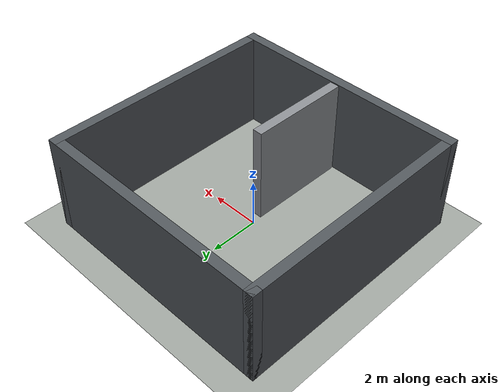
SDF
<?xml version="1.0" ?>
<sdf version="1.5">
  <world name="robocup_training_city_unit_single_wall_s42">

    <!-- Self-contained training world: no online model repository,
         no remote URIs, no vehicle and no plugins. The iris is
         spawned by the upstream PX4 launch, never by this file. -->

    <light type="directional" name="training_sun">
      <pose>0 0 30 0 0 0</pose>
      <cast_shadows>true</cast_shadows>
      <diffuse>0.75 0.75 0.72 1</diffuse>
      <specular>0.12 0.12 0.12 1</specular>
      <direction>-0.4 0.3 -1</direction>
    </light>

    <model name="training_ground">
      <static>true</static>
      <pose>0 0 0 0 0 0</pose>
      <link name="link">
        <collision name="collision">
          <geometry><plane><normal>0 0 1</normal><size>1000 1000</size></plane></geometry>
          <surface>
            <friction><ode><mu>1</mu><mu2>1</mu2></ode></friction>
            <contact><ode/></contact>
          </surface>
        </collision>
        <visual name="visual">
          <geometry><plane><normal>0 0 1</normal><size>1000 1000</size></plane></geometry>
          <material>
            <ambient>0.279 0.288 0.279 1</ambient>
            <diffuse>0.62 0.64 0.62 1</diffuse>
            <specular>0.04 0.04 0.04 1</specular>
            <emissive>0 0 0 1</emissive>
          </material>
          <cast_shadows>false</cast_shadows>
        </visual>
      </link>
    </model>

    <model name="boundary_north">
      <static>true</static>
      <pose>0 4.8 0 0 0 0</pose>
      <link name="link">
        <pose>0 0 2 0 0 0</pose>
        <collision name="collision">
          <geometry>
            <box><size>10 0.4 4</size></box>
          </geometry>
          <surface>
            <friction><ode><mu>1</mu><mu2>1</mu2></ode></friction>
            <contact><ode/></contact>
          </surface>
        </collision>
        <visual name="visual">
          <geometry>
            <box><size>10 0.4 4</size></box>
          </geometry>
          <material>
            <ambient>0.144 0.153 0.162 1</ambient>
            <diffuse>0.32 0.34 0.36 1</diffuse>
            <specular>0.04 0.04 0.04 1</specular>
            <emissive>0 0 0 1</emissive>
          </material>
        </visual>
        <inertial>
          <mass>1</mass>
          <inertia>
            <ixx>1.346667</ixx><ixy>0</ixy><ixz>0</ixz>
            <iyy>9.666667</iyy><iyz>0</iyz>
            <izz>8.346667</izz>
          </inertia>
        </inertial>
      </link>
    </model>

    <model name="boundary_south">
      <static>true</static>
      <pose>0 -4.8 0 0 0 0</pose>
      <link name="link">
        <pose>0 0 2 0 0 0</pose>
        <collision name="collision">
          <geometry>
            <box><size>10 0.4 4</size></box>
          </geometry>
          <surface>
            <friction><ode><mu>1</mu><mu2>1</mu2></ode></friction>
            <contact><ode/></contact>
          </surface>
        </collision>
        <visual name="visual">
          <geometry>
            <box><size>10 0.4 4</size></box>
          </geometry>
          <material>
            <ambient>0.144 0.153 0.162 1</ambient>
            <diffuse>0.32 0.34 0.36 1</diffuse>
            <specular>0.04 0.04 0.04 1</specular>
            <emissive>0 0 0 1</emissive>
          </material>
        </visual>
        <inertial>
          <mass>1</mass>
          <inertia>
            <ixx>1.346667</ixx><ixy>0</ixy><ixz>0</ixz>
            <iyy>9.666667</iyy><iyz>0</iyz>
            <izz>8.346667</izz>
          </inertia>
        </inertial>
      </link>
    </model>

    <model name="boundary_east">
      <static>true</static>
      <pose>4.8 0 0 0 0 0</pose>
      <link name="link">
        <pose>0 0 2 0 0 0</pose>
        <collision name="collision">
          <geometry>
            <box><size>0.4 10 4</size></box>
          </geometry>
          <surface>
            <friction><ode><mu>1</mu><mu2>1</mu2></ode></friction>
            <contact><ode/></contact>
          </surface>
        </collision>
        <visual name="visual">
          <geometry>
            <box><size>0.4 10 4</size></box>
          </geometry>
          <material>
            <ambient>0.144 0.153 0.162 1</ambient>
            <diffuse>0.32 0.34 0.36 1</diffuse>
            <specular>0.04 0.04 0.04 1</specular>
            <emissive>0 0 0 1</emissive>
          </material>
        </visual>
        <inertial>
          <mass>1</mass>
          <inertia>
            <ixx>9.666667</ixx><ixy>0</ixy><ixz>0</ixz>
            <iyy>1.346667</iyy><iyz>0</iyz>
            <izz>8.346667</izz>
          </inertia>
        </inertial>
      </link>
    </model>

    <model name="boundary_west">
      <static>true</static>
      <pose>-4.8 0 0 0 0 0</pose>
      <link name="link">
        <pose>0 0 2 0 0 0</pose>
        <collision name="collision">
          <geometry>
            <box><size>0.4 10 4</size></box>
          </geometry>
          <surface>
            <friction><ode><mu>1</mu><mu2>1</mu2></ode></friction>
            <contact><ode/></contact>
          </surface>
        </collision>
        <visual name="visual">
          <geometry>
            <box><size>0.4 10 4</size></box>
          </geometry>
          <material>
            <ambient>0.144 0.153 0.162 1</ambient>
            <diffuse>0.32 0.34 0.36 1</diffuse>
            <specular>0.04 0.04 0.04 1</specular>
            <emissive>0 0 0 1</emissive>
          </material>
        </visual>
        <inertial>
          <mass>1</mass>
          <inertia>
            <ixx>9.666667</ixx><ixy>0</ixy><ixz>0</ixz>
            <iyy>1.346667</iyy><iyz>0</iyz>
            <izz>8.346667</izz>
          </inertia>
        </inertial>
      </link>
    </model>

    <model name="unit_wall_0000">
      <static>true</static>
      <pose>0.223083 -2.483154 0 0 0 0</pose>
      <link name="link">
        <pose>0 0 2 0 0 0</pose>
        <collision name="collision">
          <geometry>
            <box><size>0.4 4.133692 4</size></box>
          </geometry>
          <surface>
            <friction><ode><mu>1</mu><mu2>1</mu2></ode></friction>
            <contact><ode/></contact>
          </surface>
        </collision>
        <visual name="visual">
          <geometry>
            <box><size>0.4 4.133692 4</size></box>
          </geometry>
          <material>
            <ambient>0.2475 0.252 0.261 1</ambient>
            <diffuse>0.55 0.56 0.58 1</diffuse>
            <specular>0.04 0.04 0.04 1</specular>
            <emissive>0 0 0 1</emissive>
          </material>
        </visual>
        <inertial>
          <mass>1</mass>
          <inertia>
            <ixx>2.757284</ixx><ixy>0</ixy><ixz>0</ixz>
            <iyy>1.346667</iyy><iyz>0</iyz>
            <izz>1.437284</izz>
          </inertia>
        </inertial>
      </link>
    </model>

    <physics name="default_physics" default="0" type="ode">
      <gravity>0 0 -9.8066</gravity>
      <ode>
        <solver><type>quick</type><iters>10</iters><sor>1.3</sor><use_dynamic_moi_rescaling>0</use_dynamic_moi_rescaling></solver>
        <constraints><cfm>0</cfm><erp>0.2</erp><contact_max_correcting_vel>100</contact_max_correcting_vel><contact_surface_layer>0.001</contact_surface_layer></constraints>
      </ode>
      <max_step_size>0.004</max_step_size>
      <real_time_factor>1</real_time_factor>
      <real_time_update_rate>250</real_time_update_rate>
      <magnetic_field>6.0e-6 2.3e-5 -4.2e-5</magnetic_field>
    </physics>
  </world>
</sdf>
